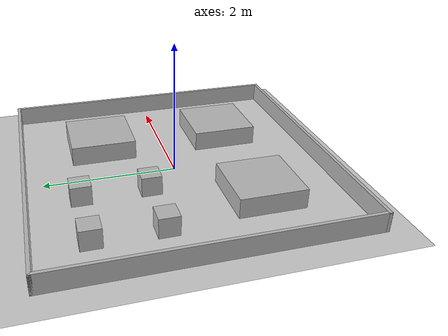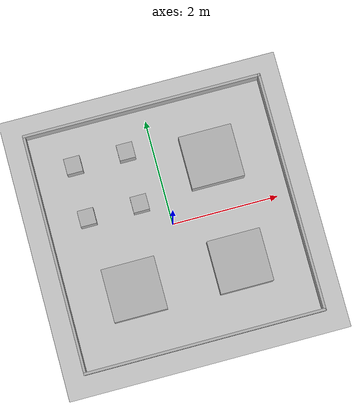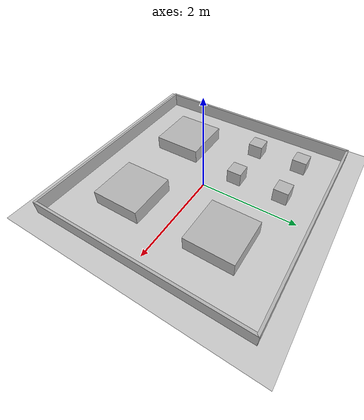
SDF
<?xml version="1.0" ?>
<sdf version="1.6">
  <world name="my_world">
     <!-- ⏱ ROS 시간 연동 -->
    <plugin name="gazebo_ros_init" filename="libgazebo_ros_init.so"/>
    <plugin name="gazebo_ros_factory" filename="libgazebo_ros_factory.so"/>

    <!-- 🌞 기본 태양광 -->
    <include>
      <uri>model://sun</uri>
    </include>

    <!-- 🧱 바닥 -->
    <include>
      <uri>model://ground_plane</uri>
    </include>

    <!-- 📷 Gazebo GUI 카메라 (필수) -->
    <gui fullscreen="0">
      <camera name="user_camera">
        <pose>-5 0 5 0 0.785 0</pose>
      </camera>
    </gui>

    <model name="nw_cube_1"><static>true</static><pose>-1.5 1.5 0.15 0 0 0</pose><link name="l"><visual name="v"><geometry><box><size>0.3 0.3 0.3</size></box></geometry></visual><collision name="c"><geometry><box><size>0.5 0.5 0.3</size></box></geometry></collision></link></model>
    <model name="nw_cube_2"><static>true</static><pose>-0.5 1.5 0.15 0 0 0</pose><link name="l"><visual name="v"><geometry><box><size>0.3 0.3 0.3</size></box></geometry></visual><collision name="c"><geometry><box><size>0.5 0.5 0.3</size></box></geometry></collision></link></model>
    <model name="nw_cube_3"><static>true</static><pose>-1.5 0.5 0.15 0 0 0</pose><link name="l"><visual name="v"><geometry><box><size>0.3 0.3 0.3</size></box></geometry></visual><collision name="c"><geometry><box><size>0.5 0.5 0.3</size></box></geometry></collision></link></model>
    <model name="nw_cube_4"><static>true</static><pose>-0.5 0.5 0.15 0 0 0</pose><link name="l"><visual name="v"><geometry><box><size>0.3 0.3 0.3</size></box></geometry></visual><collision name="c"><geometry><box><size>0.5 0.5 0.3</size></box></geometry></collision></link></model>

    <model name="block_ne">
      <static>true</static>
      <pose>1.0 1.0 0.15 0 0 0</pose>
      <link name="l"><collision name="c"><geometry><box><size>1.0 1.0 0.3</size></box></geometry></collision><visual name="v"><geometry><box><size>1.0 1.0 0.3</size></box></geometry></visual></link>
    </model>

    <model name="block_sw">
      <static>true</static>
      <pose>-1.0 -1.0 0.15 0 0 0</pose>
      <link name="l"><collision name="c"><geometry><box><size>1.0 1.0 0.3</size></box></geometry></collision><visual name="v"><geometry><box><size>1.0 1.0 0.3</size></box></geometry></visual></link>
    </model>

    <model name="block_se">
      <static>true</static>
      <pose>1.0 -1.0 0.15 0 0 0</pose>
      <link name="l"><collision name="c"><geometry><box><size>1.0 1.0  0.3</size></box></geometry></collision><visual name="v"><geometry><box><size>1.0 1.0 0.3</size></box></geometry></visual></link>
    </model>

    <model name="fence_top"><static>true</static><pose>0 2.25 0.15 0 0 0</pose><link name="l"><visual name="v"><geometry><box><size>4.55 0.05 0.3</size></box></geometry></visual><collision name="c"><geometry><box><size>4.55 0.05 0.3</size></box></geometry></collision></link></model>
    <model name="fence_bottom"><static>true</static><pose>0 -2.25 0.15 0 0 0</pose><link name="l"><visual name="v"><geometry><box><size>4.55 0.05 0.3</size></box></geometry></visual><collision name="c"><geometry><box><size>4.55 0.05 0.3</size></box></geometry></collision></link></model>
    <model name="fence_left"><static>true</static><pose>-2.25 0 0.15 0 0 0</pose><link name="l"><visual name="v"><geometry><box><size>0.05 4.55 0.3</size></box></geometry></visual><collision name="c"><geometry><box><size>0.05 4.55 0.3</size></box></geometry></collision></link></model>
    <model name="fence_right"><static>true</static><pose>2.25 0 0.15 0 0 0</pose><link name="l"><visual name="v"><geometry><box><size>0.05 4.55 0.3</size></box></geometry></visual><collision name="c"><geometry><box><size>0.05 4.55 0.3</size></box></geometry></collision></link></model>

 </world>
</sdf>
